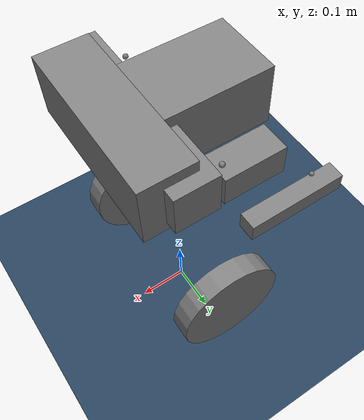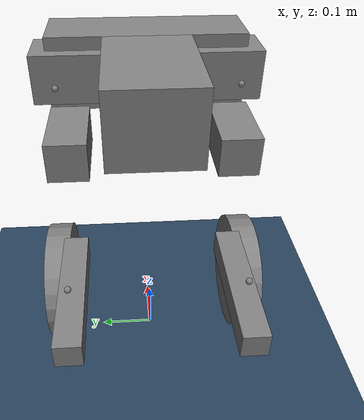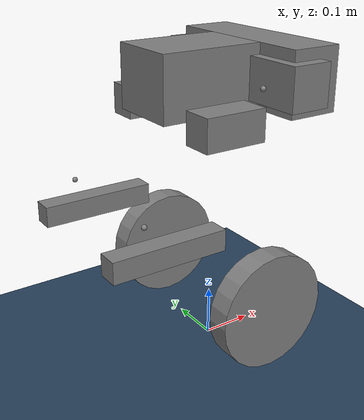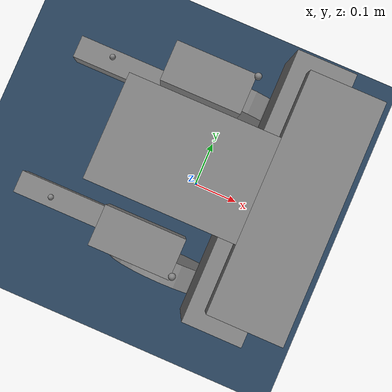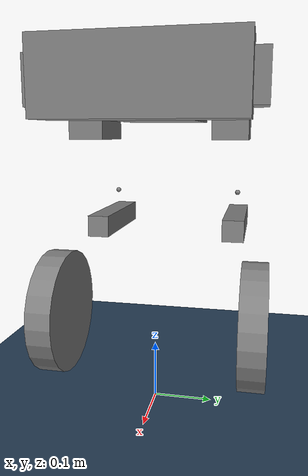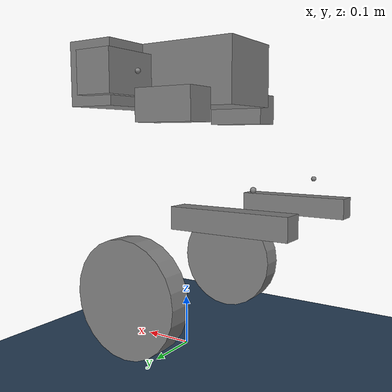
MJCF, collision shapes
<mujoco model="xqrobotwl scene vmc">
  <include file="xqrobotwl_vmc.xml"/>

  <visual>
    <headlight diffuse="0.6 0.6 0.6" ambient="0.3 0.3 0.3" specular="0 0 0"/>
    <rgba haze="0.15 0.25 0.35 1"/>
    <global azimuth="-130" elevation="-20"/>
  </visual>

  <asset>
    <texture type="skybox" builtin="gradient" rgb1="0.3 0.5 0.7" rgb2="0 0 0" width="512" height="512"/>
    <texture type="2d" name="groundplane" builtin="checker" mark="edge" rgb1="0.2 0.3 0.4" rgb2="0.1 0.2 0.3"
      markrgb="0.8 0.8 0.8" width="300" height="300"/>
    <material name="groundplane" texture="groundplane" texuniform="true" texrepeat="5 5" reflectance="0.2"/>
  </asset>

  <worldbody>
    <light pos="0 0 1.5" dir="0 0 -1" directional="true"/>
    <geom name="floor" size="0 0 0.05" type="plane" material="groundplane"/>
  </worldbody>

  <keyframe>
    <key name="home"       qpos="
        0 0 0.65  1 0 0 0
        0.1 0.15 0.15 0
        -0.1 -0.15 -0.15 0"
      ctrl="0 0 0 0 0 0 0 0"/>
  </keyframe>
</mujoco>

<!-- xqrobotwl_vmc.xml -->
<mujoco model="xqrobotwl">
  <default>
    <default class="robot">
      <joint damping="0.5" armature="0.002" frictionloss="0.01" />
      <default class="visual">
        <geom contype="0" conaffinity="0" group="2" />
      </default>
      <default class="collision">
        <geom contype="0" conaffinity="1" group="3" />
      </default>
    </default>
  </default>
  <compiler angle="radian" meshdir="meshes" balanceinertia="true" />
  <worldbody>
    <body name="base_link" childclass="robot" pos="0 0 0.55">
      <inertial pos="0.026 0 0.025" mass="5.408" diaginertia="0.014 0.025 0.025" />
      <site name="imu_in_base" size="0.01" />
      <!-- Simplified collision: upper box (wide) + lower box (narrow) -->
      <geom name="base_link_collision" type="box" size="0.05 0.16 0.06" pos="0.10 0 0.0" class="collision" />
      <geom name="base_link_collision_lower" type="box" size="0.10 0.07 0.06" pos="-0.05 0 0.0" class="collision" />
      <geom name="base_link_visual" type="mesh" mesh="base_link_visual" class="visual" />
      <body name="left_link_1" pos="0.069 -0.124 -0.001">
        <inertial pos="-0.033 -0.011 0.000" mass="1.500" diaginertia="0.00084 0.00159 0.00116" />
        <joint name="joint_left_hip_roll" type="hinge" range="0 3.1416" axis="-1 0 0" />
        <geom name="left_link_1_collision" type="box" size="0.04 0.06 0.04" class="collision" />
        <geom name="left_link_1_visual" type="mesh" mesh="left_link_1_visual" class="visual" />
        <site name="left_hip_site" size="0.005" />
        <body name="left_link_2" pos="-0.070 -0.019 0.000">
          <inertial pos="-0.107 0.010 -0.075" mass="2.000" diaginertia="0.00584 0.01016 0.00676" />
          <joint name="joint_left_hip_pitch" type="hinge" range="-1.047 2.094" axis="0 1 0" />
          <geom name="left_link_2_collision" type="box" size="0.06 0.03 0.03" pos="-0.06 0.02 -0.06" class="collision" />
          <geom name="left_link_2_visual" type="mesh" mesh="left_link_2_visual" class="visual" />
          <site name="left_thigh_site" size="0.005" />
          <body name="left_link_3" pos="-0.224 0.015 -0.200">
            <inertial pos="0.095 -0.001 -0.081" mass="0.800" diaginertia="0.00210 0.00506 0.00314" />
            <joint name="joint_left_knee" type="hinge" range="-0.873 0.873" axis="0 -1 0" />
            <geom name="left_link_3_collision" type="box" size="0.11 0.02 0.02" pos="0.04 0 -0.055" class="collision" />
            <geom name="left_link_3_visual" type="mesh" mesh="left_link_3_visual" class="visual" />
            <site name="left_calf_site" size="0.005" />
            <body name="left_link_wheel" pos="0.224 -0.037 -0.199">
              <inertial pos="0 -0.012 0.000" mass="2.323" diaginertia="0.00477 0.00897 0.00477" />
              <joint name="joint_left_wheel" type="hinge" axis="0 1 0" />
              <geom name="left_link_wheel_collision" type="cylinder" size="0.11 0.0225" pos="0 -0.012 0" euler="1.5708 0 0" class="collision" />
              <geom name="left_link_wheel_visual" type="mesh" mesh="left_link_wheel_visual" class="visual" />
              <site name="left_wheel_site" size="0.005" />
            </body>
          </body>
        </body>
      </body>
      <body name="right_link_1" pos="0.069 0.124 -0.001">
        <inertial pos="-0.033 0.011 0.000" mass="1.500" diaginertia="0.00084 0.00159 0.00116" />
        <joint name="joint_right_hip_roll" type="hinge" range="-3.1416 0" axis="-1 0 0" />
        <geom name="right_link_1_collision" type="box" size="0.04 0.06 0.04" class="collision" />
        <geom name="right_link_1_visual" type="mesh" mesh="right_link_1_visual" class="visual" />
        <site name="right_hip_site" size="0.005" />
        <body name="right_link_2" pos="-0.070 0.019 0.000">
          <inertial pos="-0.107 -0.010 -0.075" mass="2.000" diaginertia="0.00584 0.01016 0.00676" />
          <joint name="joint_right_hip_pitch" type="hinge" range="-2.094 1.047" axis="0 -1 0" />
          <geom name="right_link_2_collision" type="box" size="0.06 0.03 0.03" pos="-0.06 -0.02 -0.06" class="collision" />
          <geom name="right_link_2_visual" type="mesh" mesh="right_link_2_visual" class="visual" />
          <site name="right_thigh_site" size="0.005" />
          <body name="right_link_3" pos="-0.224 -0.015 -0.200">
            <inertial pos="0.095 0.001 -0.081" mass="0.800" diaginertia="0.00210 0.00506 0.00314" />
            <joint name="joint_right_knee" type="hinge" range="-0.873 0.873" axis="0 1 0" />
            <geom name="right_link_3_collision" type="box" size="0.11 0.02 0.02" pos="0.04 0 -0.055" class="collision" />
            <geom name="right_link_3_visual" type="mesh" mesh="right_link_3_visual" class="visual" />
            <site name="right_calf_site" size="0.005" />
            <body name="right_link_wheel" pos="0.224 0.031 -0.204">
              <inertial pos="0 0.012 0.000" mass="2.323" diaginertia="0.00477 0.00897 0.00477" />
              <joint name="joint_right_wheel" type="hinge" axis="0 -1 0" />
              <geom name="right_link_wheel_collision" type="cylinder" size="0.11 0.0225" pos="0 0.012 0" euler="1.5708 0 0" class="collision" />
              <geom name="right_link_wheel_visual" type="mesh" mesh="right_link_wheel_visual" class="visual" />
              <site name="right_wheel_site" size="0.005" />
            </body>
          </body>
        </body>
      </body>
      <freejoint name="floating_base" />
    </body>
  </worldbody>
  <asset>
    <mesh name="base_link_visual" file="base_link.STL" />
    <mesh name="left_link_1_visual" file="left_link_1.STL" />
    <mesh name="left_link_2_visual" file="left_link_2.STL" />
    <mesh name="left_link_3_visual" file="left_link_3.STL" />
    <mesh name="left_link_wheel_visual" file="left_link_wheel.STL" />
    <mesh name="right_link_1_visual" file="right_link_1.STL" />
    <mesh name="right_link_2_visual" file="right_link_2.STL" />
    <mesh name="right_link_3_visual" file="right_link_3.STL" />
    <mesh name="right_link_wheel_visual" file="right_link_wheel.STL" />
  </asset>
  <!-- VMC 变体: 全部 8 个作动器为 motor(力矩控制), ctrl 单位为 N·m
       腿 ±50: 蹬伸需 -60~-134 N·m (深蹲时), ±30 饱和导致蹬伸无力跳不高 -->
  <actuator>
    <motor name="joint_left_hip_roll" joint="joint_left_hip_roll" ctrlrange="-50 50" />
    <motor name="joint_left_hip_pitch" joint="joint_left_hip_pitch" ctrlrange="-50 50" />
    <motor name="joint_left_knee" joint="joint_left_knee" ctrlrange="-50 50" />
    <motor name="joint_left_wheel" joint="joint_left_wheel" ctrlrange="-10 10" />
    <motor name="joint_right_hip_roll" joint="joint_right_hip_roll" ctrlrange="-50 50" />
    <motor name="joint_right_hip_pitch" joint="joint_right_hip_pitch" ctrlrange="-50 50" />
    <motor name="joint_right_knee" joint="joint_right_knee" ctrlrange="-50 50" />
    <motor name="joint_right_wheel" joint="joint_right_wheel" ctrlrange="-10 10" />
  </actuator>
  <sensor>
    <framelinvel name="local_linvel" objtype="body" objname="base_link" />
    <gyro name="gyro" site="imu_in_base" />
    <framezaxis name="upvector" objtype="body" objname="base_link" />
    <jointpos name="left_hip_roll_pos" joint="joint_left_hip_roll" />
    <jointvel name="left_hip_roll_vel" joint="joint_left_hip_roll" />
    <jointpos name="left_hip_pitch_pos" joint="joint_left_hip_pitch" />
    <jointvel name="left_hip_pitch_vel" joint="joint_left_hip_pitch" />
    <jointpos name="left_knee_pos" joint="joint_left_knee" />
    <jointvel name="left_knee_vel" joint="joint_left_knee" />
    <jointpos name="left_wheel_pos" joint="joint_left_wheel" />
    <jointvel name="left_wheel_vel" joint="joint_left_wheel" />
    <jointpos name="right_hip_roll_pos" joint="joint_right_hip_roll" />
    <jointvel name="right_hip_roll_vel" joint="joint_right_hip_roll" />
    <jointpos name="right_hip_pitch_pos" joint="joint_right_hip_pitch" />
    <jointvel name="right_hip_pitch_vel" joint="joint_right_hip_pitch" />
    <jointpos name="right_knee_pos" joint="joint_right_knee" />
    <jointvel name="right_knee_vel" joint="joint_right_knee" />
    <jointpos name="right_wheel_pos" joint="joint_right_wheel" />
    <jointvel name="right_wheel_vel" joint="joint_right_wheel" />
    <force name="left_wheel_force" site="left_wheel_site" />
    <force name="right_wheel_force" site="right_wheel_site" />
    <torque name="left_hip_torque" site="left_hip_site" />
    <torque name="left_thigh_torque" site="left_thigh_site" />
    <torque name="left_calf_torque" site="left_calf_site" />
    <torque name="right_hip_torque" site="right_hip_site" />
    <torque name="right_thigh_torque" site="right_thigh_site" />
    <torque name="right_calf_torque" site="right_calf_site" />
    <torque name="left_wheel_torque" site="left_wheel_site" />
    <torque name="right_wheel_torque" site="right_wheel_site" />
    <force name="left_thigh_force" site="left_thigh_site" />
    <force name="left_calf_force" site="left_calf_site" />
    <force name="right_thigh_force" site="right_thigh_site" />
    <force name="right_calf_force" site="right_calf_site" />
  </sensor>
</mujoco>
